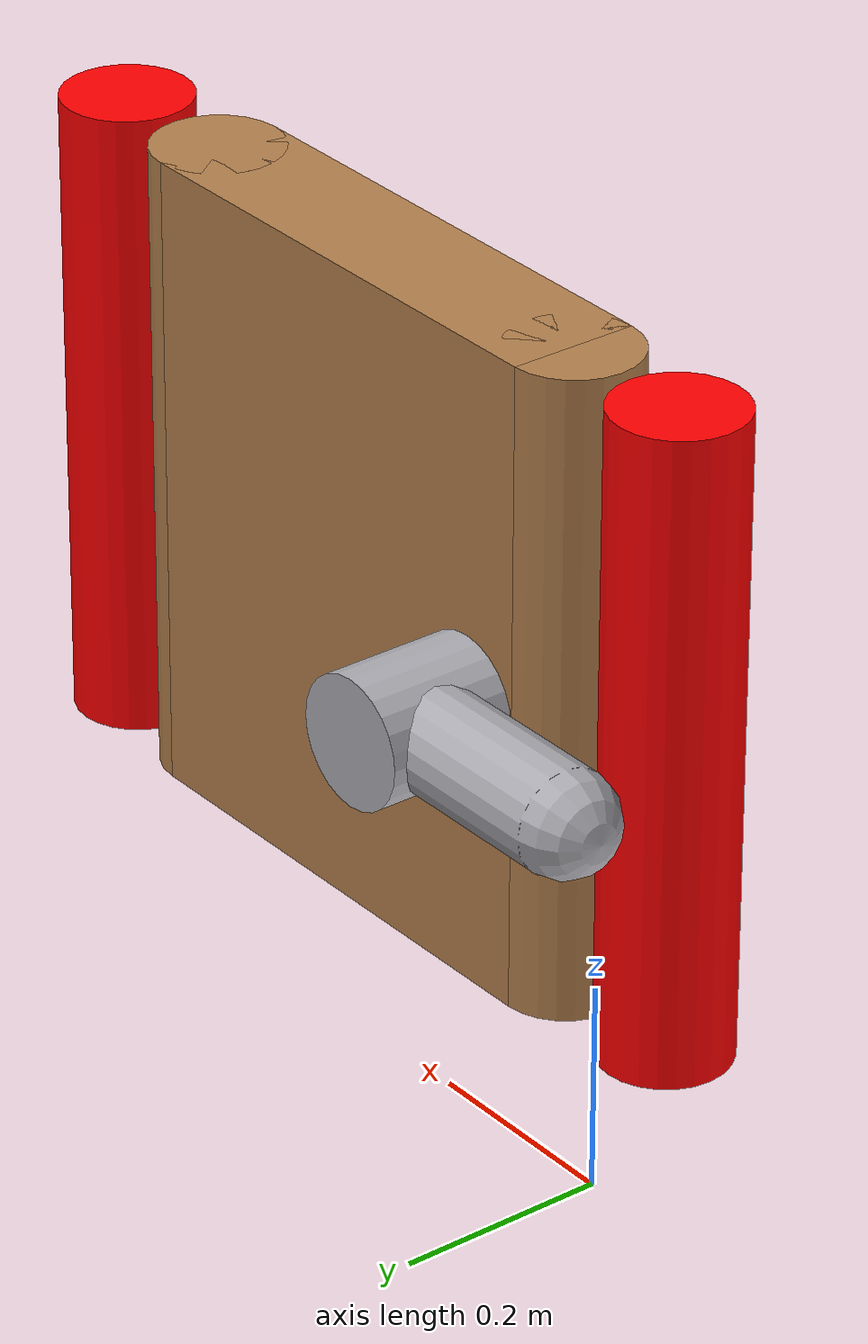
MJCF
<mujoco model='ADROIT-door(v1.5)'>

    <!-- ======= WORLD ======= -->
    <worldbody>
        <light directional='false' diffuse='.7 .7 .7' specular='0.03 0.03 0.03' pos='-1 -1.0 4.0' dir='1 1.0 -4'/>
        <camera name="fixed" pos="0 -0.7 0.7" quat="0.92388 0.382683 0 0" />
        <!-- Camera for the VIL paper -->

        <!-- ======= DOOR ======= -->
        <body name="frame" pos="-0.128807 0.0522352 0.5368512" user="1001 0 2002 -0.48 -0.12 0.3024 0 0.36 0.54">
            <inertial pos="0.348 0 0" quat="0.5 0.5 0.5 0.5" mass="7.85398" diaginertia="1.1079612 0.917502 0.2022396" />
            <geom size="0.06 0.3" pos="0.72 0 0" type="cylinder" material="MatWood" rgba="1 0 0 1" />
            <geom size="0.06 0.3" pos="-0.024 0 0" type="cylinder" material="MatWood" rgba="1 0 0 1" />
            <site name="S_handle_target" pos="0.9 -0.6 -0.216" size="0.03" group='3'/>
            <body name="door" pos="0.348 0 0">
                <inertial pos="0.03561792 -0.00182814 0" quat="0.701072 0 0 0.713091" mass="2.43455" diaginertia="0.10965012 0.0625938 0.0524568" />
                <joint name="door_hinge" pos="0.372 0 0" axis="0 0 1" range="0 1.57" damping="1" frictionloss="2" />
                <geom size="0.24 0.06 0.3" type="box" friction="1 1 1" material="MatWood" />
                <geom size="0.06 0.3" pos="0.24 0 0" type="cylinder" material="MatWood" />
                <geom size="0.06 0.3" pos="-0.24 0 0" type="cylinder" material="MatWood" />
                <body name="latch" pos="-0.18 0 -0.03">
                    <inertial pos="-0.0213144 0.01662528 0" quat="0.365653 0.605347 -0.36522 0.605365" mass="3.53743" diaginertia="0.05805252 0.04932012 0.01332156" />
                    <joint name="latch" pos="0 0 0" axis="0 1 0" range="0 1.8" frictionloss="5" />
                    <geom size="0.06 0.18" quat="0.707388 0.706825 0 0" type="cylinder" material="MatFoil" />
                    <geom size="0.024 0.12" pos="0.12 -0.18 0" quat="0.707388 0 0.706825 0" type="capsule" material="MatFoil" />
                    <geom size="0.048 0.084" pos="-0.12 0.12 0" quat="0.707388 0 0.706825 0" type="capsule" material="MatFoil" />
                    <site name="S_handle" pos="0.18 -0.18 0" size="0.03" group='3'/>
                </body>
            </body>
        </body>

    </worldbody>

    <include file='assets.xml'/>

</mujoco>

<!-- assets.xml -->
<mujocoinclude>
 	<compiler angle="radian" meshdir='../../../sims/Adroit/resources/meshes/' texturedir='../textures/' />
    <option apirate="200" iterations="20" noslip_iterations="20"/>
    <size njmax="500" nconmax="100" nstack="600000" nuser_body="9" nuser_jnt="1" nuser_site="1" nuser_tendon="1" nuser_actuator="16" nuser_sensor="1" />
    <visual>
        <global offwidth="3024" offheight="1680" />
        <quality shadowsize="4096" offsamples="8" />
        <map force="0.1" fogend="5" />
    </visual>
    <default class="main">
        <mesh scale="0.001 0.001 0.001" />
        <joint limited="true" margin="0.01" armature="0.001" damping="0.05" frictionloss="0.001" />
        <geom friction="1 0.5 0.01" margin="0.0005" />
        <site size="0.005 0 0" rgba="0.4 0.9 0.4 1" />
        <tendon limited="true" />
        <general ctrllimited="true" ctrlrange="-1 1" user="0 1 0.03 0.0939711 0.513477 0.0358776 1.23598 8.40409 0.485031 6.04244 1.02187 0.175297 0.121642 0 0 0" />
        <default class="D_Touch">
            <site size="0.009 0.004 0.013" group="4" type="box" rgba="0.8 0.8 0.8 0.15" />
            <general user="0 1 0.03 0.0939711 0.513477 0.0358776 1.23598 8.40409 0.485031 6.04244 1.02187 0.175297 0.121642 0 0 0" />
        </default>
        <default class="DC_Hand">
            <geom conaffinity="0" group="4" material="MatColl" />
            <general user="0 1 0.03 0.0939711 0.513477 0.0358776 1.23598 8.40409 0.485031 6.04244 1.02187 0.175297 0.121642 0 0 0" />
        </default>
        <default class="D_Vizual">
            <geom type="mesh" contype="0" conaffinity="0" group="1" material="MatViz" />
            <general user="0 1 0.03 0.0939711 0.513477 0.0358776 1.23598 8.40409 0.485031 6.04244 1.02187 0.175297 0.121642 0 0 0" />
        </default>
        <default class="free">
            <joint type="free" limited="false" armature="0" damping="0" />
            <general user="0 1 0.03 0.0939711 0.513477 0.0358776 1.23598 8.40409 0.485031 6.04244 1.02187 0.175297 0.121642 0 0 0" />
        </default>
    </default>
    <asset>
        <texture type="cube" name="texgeom" builtin="flat" mark="cross" rgb1="0.3 0.6 0.5" rgb2="0.3 0.6 0.5" width="127" height="762" />
        <texture type="cube" name="wood" file="textures/wood.png" />
        <texture type="2d" name="wood2d" file="textures/wood.png" />
        <texture type="cube" name="square" file="textures/square.png" />
        <texture type="cube" name="foil" file="textures/silverRaw.png" />
        <texture type="cube" name="woodb" file="textures/woodb.png" />
        <texture type="2d" name="groundplane" builtin="checker" rgb1="0.2 0.3 0.4" rgb2="0.1 0.2 0.3" width="100" height="100" />
        <texture type="2d" name="marble2d" file="textures/marble.png" />
        <texture type="cube" name="marblecube" file="textures/marble.png" />
        <material name="MatColl" specular="1" shininess="0.3" reflectance="0.5" rgba="0.4 0.5 0.6 1" />
        <material name="MatViz" specular="0.75" shininess="0.1" reflectance="0.5" rgba="0.9 0.7 0.5 1" />
        <material name="MatGnd" specular="0.3" shininess="0.3" reflectance="0.3" rgba="0.5 0.55 0.5 1" />
        <material name="object" texture="texgeom" />
        <material name="groundplane" texture="groundplane" texrepeat="10 10" />
        <material name="table2d" texture="marble2d" reflectance="0.3" rgba="0.8 0.8 0.8 1" />
        <material name="tablecube" texture="marblecube" rgba="0.8 0.8 0.8 1" />
        <material name="MatFoil" texture="foil" specular="1" shininess="0.3" rgba="0.9 0.9 0.9 1" />
        <material name="MatPlane" specular="0.3" shininess="0.3" rgba="0.3 0.3 0.2 1" />
        <material name="MatWood" texture="wood" texrepeat="3 3" specular="0.4" shininess="0.1" />
        <material name="MatSquare" texture="square" specular="1" shininess="0.6" rgba="0.8 0.8 0.8 1" />
        <material name="MatWoodR" texture="wood" specular="1" shininess="0.3" rgba="1 0.5 0.5 1" />
        <material name="MatWoodG" texture="wood" specular="1" shininess="0.3" rgba="0.2 1 0.2 1" />
        <material name="MatWoodB" texture="woodb" specular="1" shininess="0.3" />

    </asset>

 </mujocoinclude>
